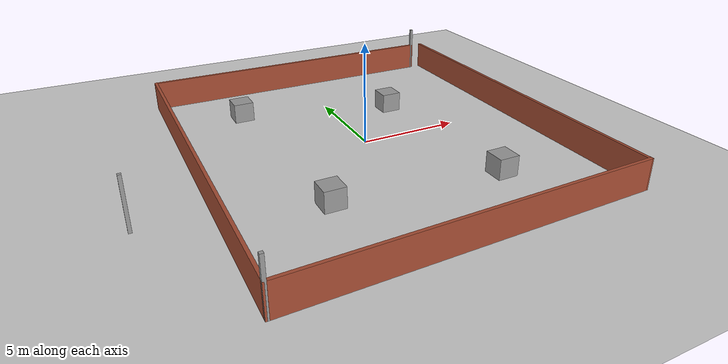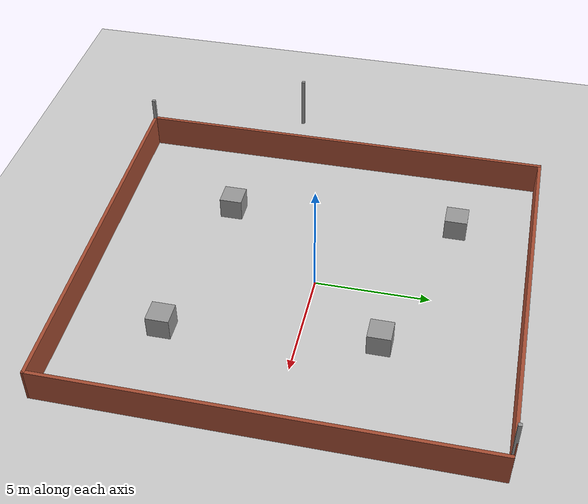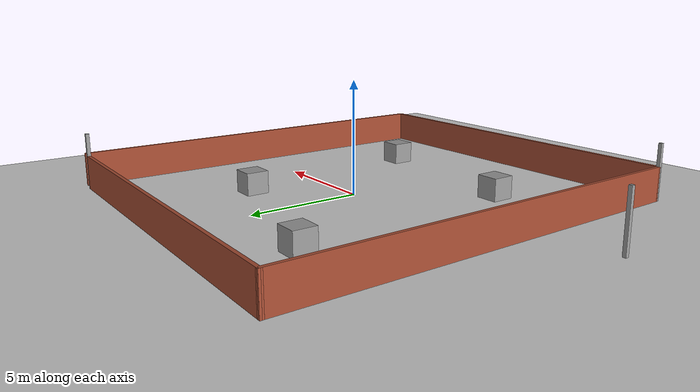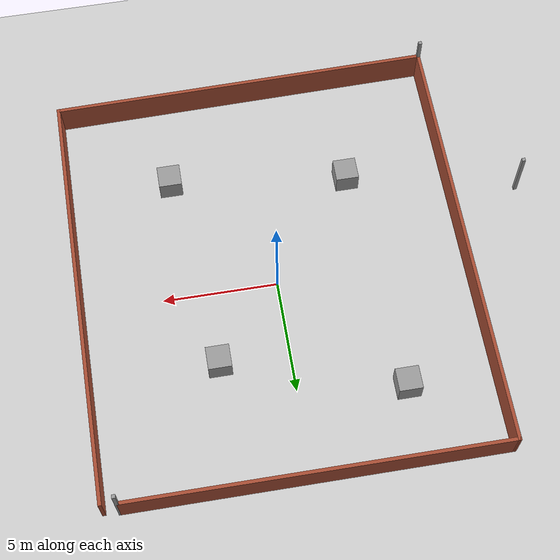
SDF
<sdf version="1.6">
 <world name="default">
  <scene><ambient>0.4 0.4 0.4 1</ambient><background>0.7 0.7 0.7 1</background><shadows>1</shadows></scene>
  <light name="sun" type="directional">
   <pose>0 0 10 0 -0 0</pose>
   <diffuse>0.8 0.8 0.8 1</diffuse>
   <specular>0.2 0.2 0.2 1</specular>
   <attenuation>
    <range>1000</range>
    <constant>0.9</constant>
    <linear>0.01</linear>
    <quadratic>0.001</quadratic>
   </attenuation>
   <direction>-0.5 0.1 -0.9</direction>
  </light>
  <model name="ground_plane">
   <static>1</static>
   <link name="link">
    <collision name="collision">
     <geometry><plane><normal>0 0 1</normal><size>100 100</size></plane></geometry>
     <surface>
      <contact><collide_bitmask>65535</collide_bitmask></contact>
      <friction><ode><mu>100</mu><mu2>50</mu2></ode></friction>
     </surface>
    </collision>
    <visual name="visual">
     <cast_shadows>0</cast_shadows>
     <geometry><plane><normal>0 0 1</normal><size>100 100</size></plane></geometry>
     <material>
      <script><uri>file://media/materials/scripts/gazebo.material</uri><name>Gazebo/Grey</name></script>
     </material>
    </visual>
   </link>
  </model>
  <model name="barriers">
   <pose>-1.44668 -0.386415 0 0 -0 0</pose>
   <link name="Wall_12">
    <collision name="Wall_12_Collision">
     <geometry><box><size>18.8961 0.15 1.5</size></box></geometry>
     <pose>0 0 0.75 0 -0 0</pose>
    </collision>
    <visual name="Wall_12_Visual">
     <pose>0 0 0.75 0 -0 0</pose>
     <geometry><box><size>18.8961 0.15 1.5</size></box></geometry>
     <material>
      <script><uri>file://media/materials/scripts/gazebo.material</uri><name>Gazebo/Bricks</name></script>
      <ambient>1 1 1 1</ambient>
     </material>
     <meta><layer>0</layer></meta>
    </visual>
    <pose>-6.82382 0.000415 0 0 -0 -1.56765</pose>
   </link>
   <link name="Wall_13">
    <collision name="Wall_13_Collision">
     <geometry><box><size>0.15 0.15 2.5</size></box></geometry>
     <pose>0 0 1.25 0 -0 0</pose>
    </collision>
    <visual name="Wall_13_Visual">
     <pose>0 0 1.25 0 -0 0</pose>
     <geometry><box><size>0.15 0.15 2.5</size></box></geometry>
     <material>
      <script><uri>file://media/materials/scripts/gazebo.material</uri><name>Gazebo/Grey</name></script>
      <ambient>1 1 1 1</ambient>
     </material>
     <meta><layer>0</layer></meta>
    </visual>
    <pose>-6.79432 -9.37258 0 0 -0 0</pose>
   </link>
   <link name="Wall_16">
    <collision name="Wall_16_Collision">
     <geometry><box><size>16.25 0.15 1.5</size></box></geometry>
     <pose>0 0 0.75 0 -0 0</pose>
    </collision>
    <visual name="Wall_16_Visual">
     <pose>0 0 0.75 0 -0 0</pose>
     <geometry><box><size>16.25 0.15 1.5</size></box></geometry>
     <material>
      <script><uri>file://media/materials/scripts/gazebo.material</uri><name>Gazebo/Bricks</name></script>
      <ambient>1 1 1 1</ambient>
     </material>
     <meta><layer>0</layer></meta>
    </visual>
    <pose>1.19668 9.34292 0 0 -0 -0.003789</pose>
   </link>
   <link name="Wall_17">
    <collision name="Wall_17_Collision">
     <geometry><box><size>0.15 0.15 2.5</size></box></geometry>
     <pose>0 0 1.25 0 -0 0</pose>
    </collision>
    <visual name="Wall_17_Visual">
     <pose>0 0 1.25 0 -0 0</pose>
     <geometry><box><size>0.15 0.15 2.5</size></box></geometry>
     <material>
      <script><uri>file://media/materials/scripts/gazebo.material</uri><name>Gazebo/Grey</name></script>
      <ambient>1 1 1 1</ambient>
     </material>
     <meta><layer>0</layer></meta>
    </visual>
    <pose>9.24668 9.31241 0 0 -0 0</pose>
   </link>
   <link name="Wall_20">
    <collision name="Wall_20_Collision">
     <geometry><box><size>18.5 0.15 1.5</size></box></geometry>
     <pose>0 0 0.75 0 -0 0</pose>
    </collision>
    <visual name="Wall_20_Visual">
     <pose>0 0 0.75 0 -0 0</pose>
     <geometry><box><size>18.5 0.15 1.5</size></box></geometry>
     <material>
      <script><uri>file://media/materials/scripts/gazebo.material</uri><name>Gazebo/Bricks</name></script>
      <ambient>1 1 1 1</ambient>
     </material>
     <meta><layer>0</layer></meta>
    </visual>
    <pose>9.90568 0.052415 0 0 -0 -1.5708</pose>
   </link>
   <link name="Wall_21">
    <collision name="Wall_21_Collision">
     <geometry><box><size>16.8519 0.15 1.5</size></box></geometry>
     <pose>0 0 0.75 0 -0 0</pose>
    </collision>
    <visual name="Wall_21_Visual">
     <pose>0 0 0.75 0 -0 0</pose>
     <geometry><box><size>16.8519 0.15 1.5</size></box></geometry>
     <material>
      <script><uri>file://media/materials/scripts/gazebo.material</uri><name>Gazebo/Bricks</name></script>
      <ambient>1 1 1 1</ambient>
     </material>
     <meta><layer>0</layer></meta>
    </visual>
    <pose>1.55568 -9.24758 0 0 -0 -3.12662</pose>
   </link>
   <link name="Wall_22">
    <collision name="Wall_22_Collision">
     <geometry><box><size>0.15 0.15 2.5</size></box></geometry>
     <pose>0 0 1.25 0 -0 0</pose>
    </collision>
    <visual name="Wall_22_Visual">
     <pose>0 0 1.25 0 -0 0</pose>
     <geometry><box><size>0.15 0.15 2.5</size></box></geometry>
     <material>
      <script><uri>file://media/materials/scripts/gazebo.material</uri><name>Gazebo/Grey</name></script>
      <ambient>1 1 1 1</ambient>
     </material>
     <meta><layer>0</layer></meta>
    </visual>
    <pose>-6.79432 -9.37258 0 0 -0 0</pose>
   </link>
   <link name="Wall_9">
    <collision name="Wall_9_Collision">
     <geometry><box><size>0.15 0.15 2.5</size></box></geometry>
     <pose>0 0 1.25 0 -0 0</pose>
    </collision>
    <visual name="Wall_9_Visual">
     <pose>0 0 1.25 0 -0 0</pose>
     <geometry><box><size>0.15 0.15 2.5</size></box></geometry>
     <material>
      <script><uri>file://media/materials/scripts/gazebo.material</uri><name>Gazebo/Grey</name></script>
      <ambient>1 1 1 1</ambient>
     </material>
     <meta><layer>0</layer></meta>
    </visual>
    <pose>-9.9068 -2.57035 0 0 -0 0</pose>
   </link>
   <static>1</static>
  </model>
  <physics name="default_physics" default="0" type="ode">
   <real_time_update_rate>1000</real_time_update_rate>
   <max_step_size>0.001</max_step_size>
   <real_time_factor>1</real_time_factor>
   <ode>
    <solver>
     <type>quick</type>
     <iters>150</iters>
     <precon_iters>0</precon_iters>
     <sor>1.4</sor>
     <use_dynamic_moi_rescaling>1</use_dynamic_moi_rescaling>
    </solver>
    <constraints>
     <cfm>1e-05</cfm>
     <erp>0.2</erp>
     <contact_max_correcting_vel>2000</contact_max_correcting_vel>
     <contact_surface_layer>0.01</contact_surface_layer>
    </constraints>
   </ode>
  </physics>
  <gravity>0 0 -9.8</gravity>
  <magnetic_field>6e-06 2.3e-05 -4.2e-05</magnetic_field>
  <atmosphere type="adiabatic"/>
  <audio><device>default</device></audio>
  <spherical_coordinates>
   <surface_model>EARTH_WGS84</surface_model>
   <latitude_deg>0</latitude_deg>
   <longitude_deg>0</longitude_deg>
   <elevation>0</elevation>
   <heading_deg>0</heading_deg>
  </spherical_coordinates>
  <model name="unit_box">
   <pose>-3.86695 -4.63905 0.5 0 -0 0</pose>
   <link name="link">
    <inertial>
     <mass>1</mass>
     <inertia>
      <ixx>0.166667</ixx>
      <ixy>0</ixy>
      <ixz>0</ixz>
      <iyy>0.166667</iyy>
      <iyz>0</iyz>
      <izz>0.166667</izz>
     </inertia>
    </inertial>
    <collision name="collision"><geometry><box><size>1 1 1</size></box></geometry></collision>
    <visual name="visual">
     <geometry><box><size>1 1 1</size></box></geometry>
     <material>
      <script><name>Gazebo/Grey</name><uri>file://media/materials/scripts/gazebo.material</uri></script>
     </material>
    </visual>
   </link>
  </model>
  <model name="unit_box_0">
   <pose>-4.57458 5.57689 0.5 0 -0 0</pose>
   <link name="link">
    <inertial>
     <mass>1</mass>
     <inertia>
      <ixx>0.166667</ixx>
      <ixy>0</ixy>
      <ixz>0</ixz>
      <iyy>0.166667</iyy>
      <iyz>0</iyz>
      <izz>0.166667</izz>
     </inertia>
    </inertial>
    <collision name="collision"><geometry><box><size>1 1 1</size></box></geometry></collision>
    <visual name="visual">
     <geometry><box><size>1 1 1</size></box></geometry>
     <material>
      <script><name>Gazebo/Grey</name><uri>file://media/materials/scripts/gazebo.material</uri></script>
     </material>
    </visual>
   </link>
  </model>
  <model name="unit_box_1">
   <pose>3.9495 -5.60099 0.5 0 -0 0</pose>
   <link name="link">
    <inertial>
     <mass>1</mass>
     <inertia>
      <ixx>0.166667</ixx>
      <ixy>0</ixy>
      <ixz>0</ixz>
      <iyy>0.166667</iyy>
      <iyz>0</iyz>
      <izz>0.166667</izz>
     </inertia>
    </inertial>
    <collision name="collision"><geometry><box><size>1 1 1</size></box></geometry></collision>
    <visual name="visual">
     <geometry><box><size>1 1 1</size></box></geometry>
     <material>
      <script><name>Gazebo/Grey</name><uri>file://media/materials/scripts/gazebo.material</uri></script>
     </material>
    </visual>
   </link>
  </model>
  <model name="unit_box_2">
   <pose>3.01654 3.32762 0.5 0 -0 0</pose>
   <link name="link">
    <inertial>
     <mass>1</mass>
     <inertia>
      <ixx>0.166667</ixx>
      <ixy>0</ixy>
      <ixz>0</ixz>
      <iyy>0.166667</iyy>
      <iyz>0</iyz>
      <izz>0.166667</izz>
     </inertia>
    </inertial>
    <collision name="collision"><geometry><box><size>1 1 1</size></box></geometry></collision>
    <visual name="visual">
     <geometry><box><size>1 1 1</size></box></geometry>
     <material>
      <script><name>Gazebo/Grey</name><uri>file://media/materials/scripts/gazebo.material</uri></script>
     </material>
    </visual>
   </link>
  </model>
 </world>
</sdf>
